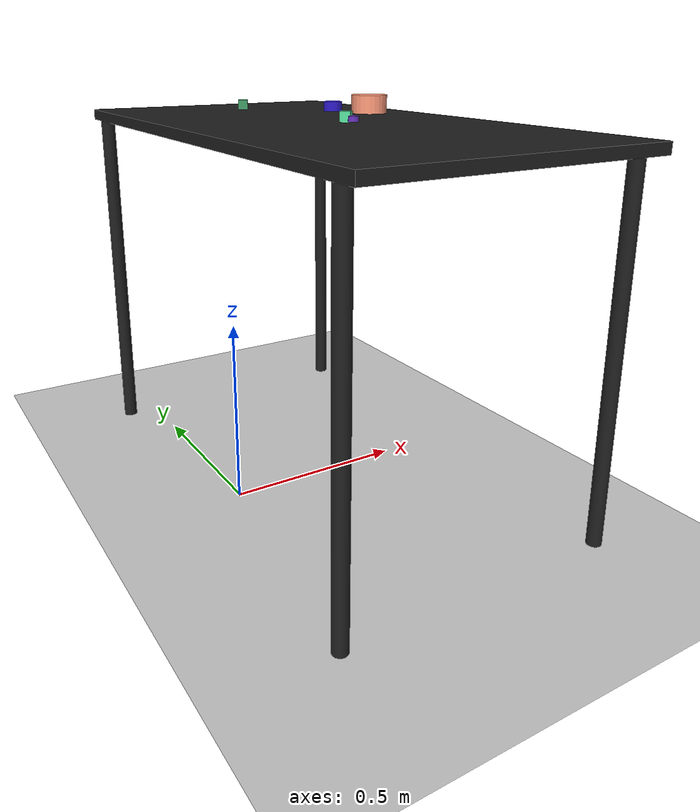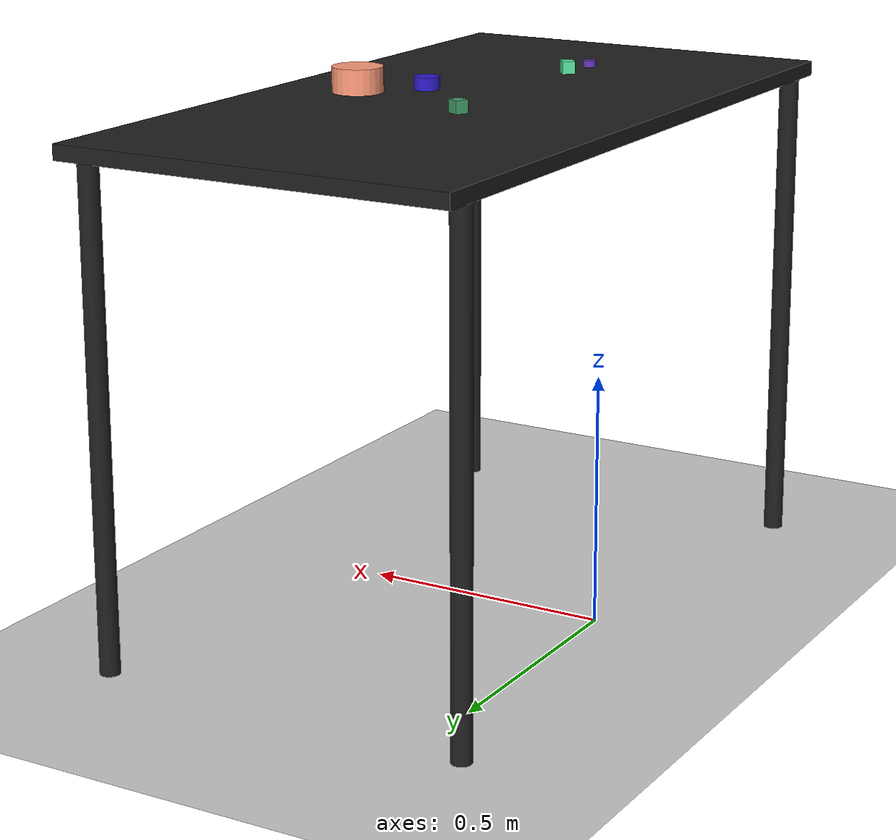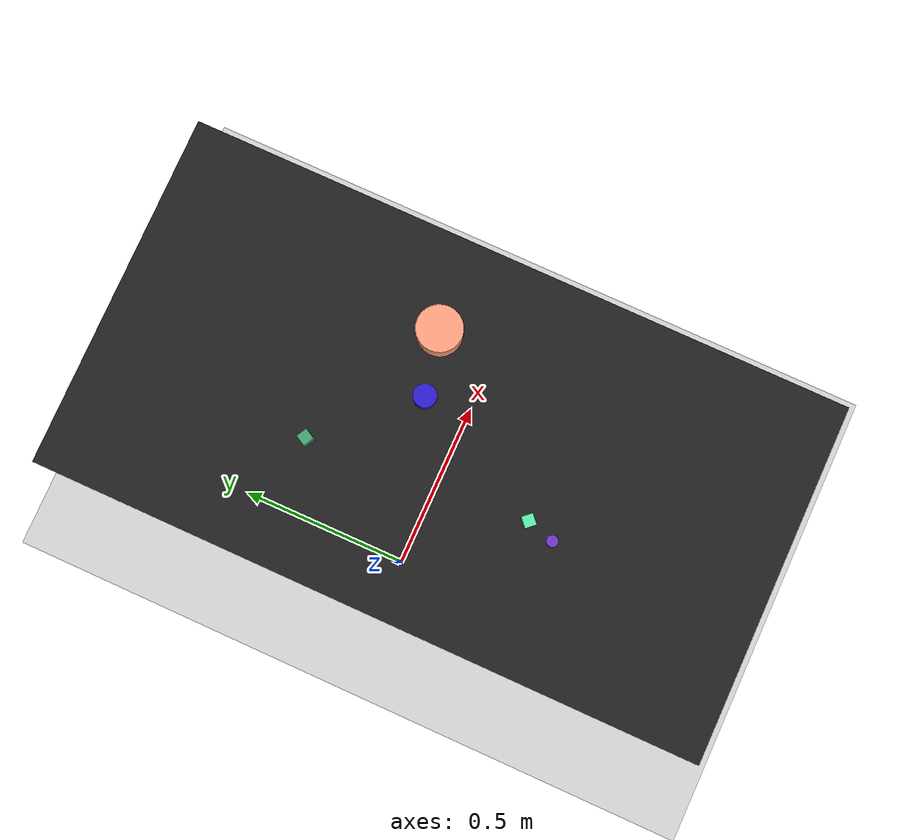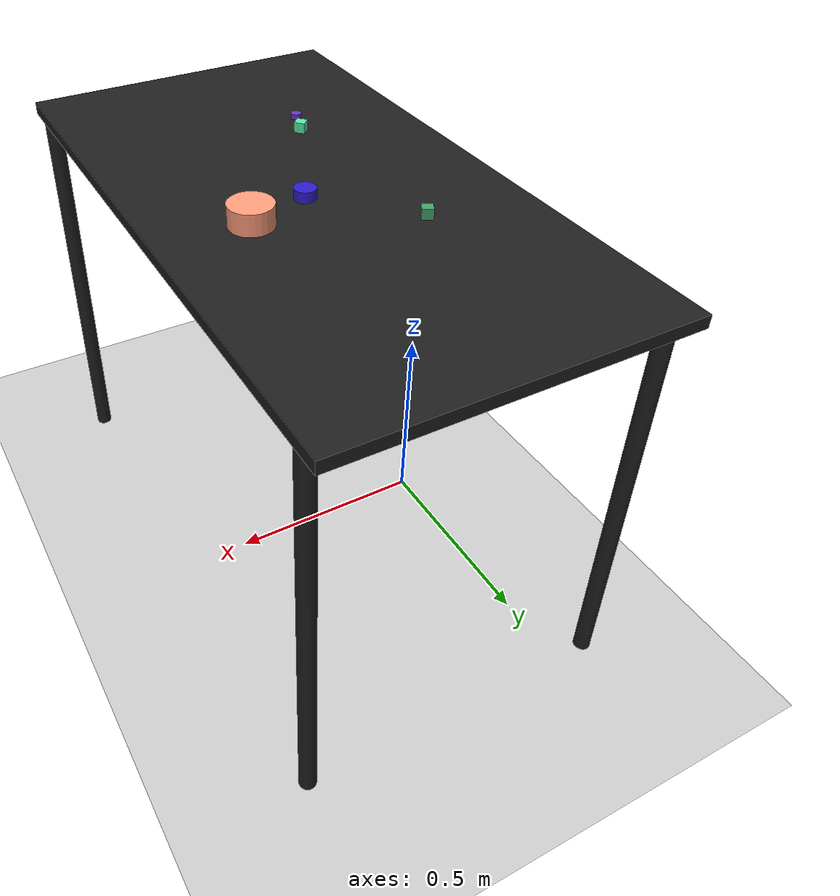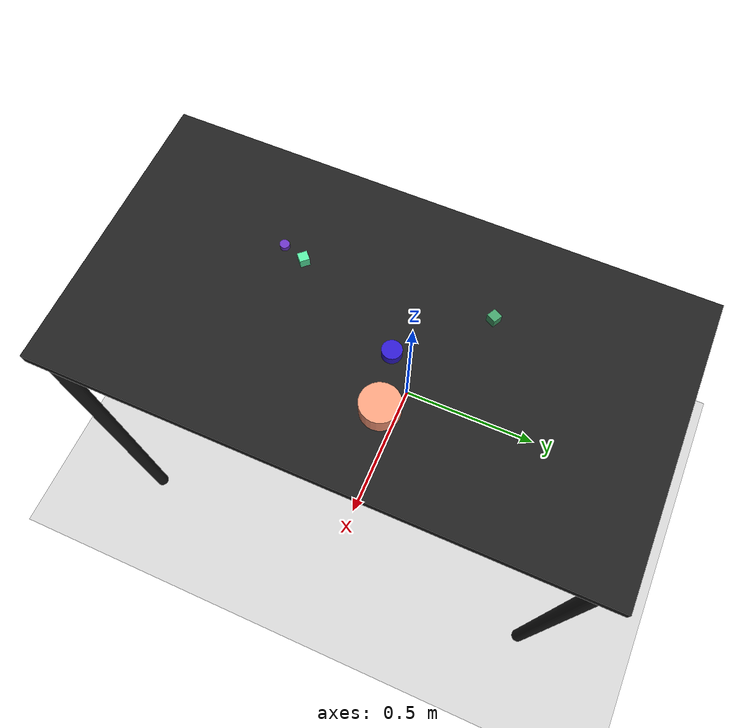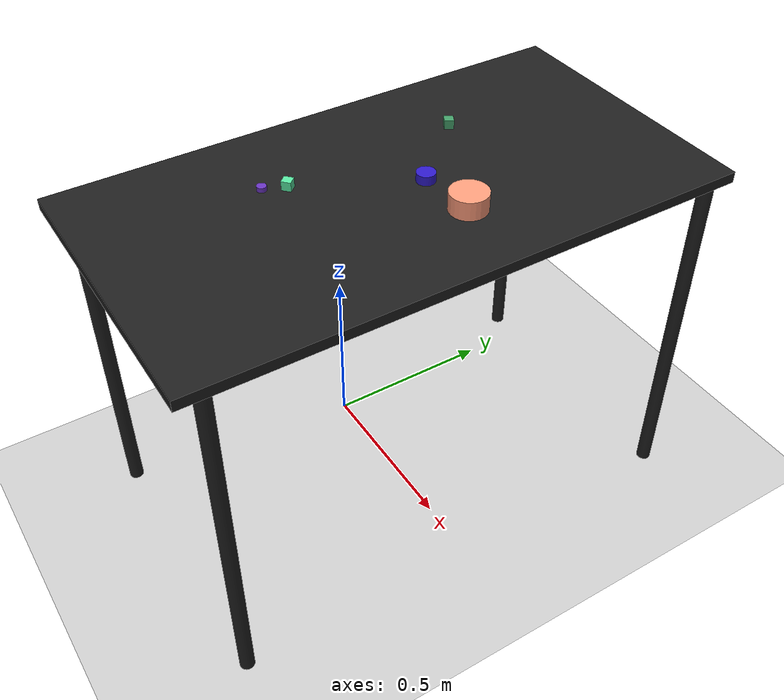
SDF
<?xml version="1.0" ?>
<sdf version="1.6">
  <world name="arm_world">
    <plugin filename="gz-sim-physics-system" name="gz::sim::systems::Physics">
      <engine>
        <filename>libgz-physics-bullet-featherstone-plugin.so</filename>
      </engine>
    </plugin>
    <plugin filename="gz-sim-user-commands-system" name="gz::sim::systems::UserCommands"/>
    <plugin filename="gz-sim-scene-broadcaster-system" name="gz::sim::systems::SceneBroadcaster"/>
    <plugin filename="gz-sim-sensors-system" name="gz::sim::systems::Sensors">
      <render_engine>ogre2</render_engine>
    </plugin>
    <gravity>0.0 0.0 -9.8</gravity>
    <scene>
      <shadows>false</shadows>
    </scene>
    <gui>
      <camera name="user_camera">
        <pose>0.75 -0.75 1.4 0 0.29 2.21</pose>
      </camera>
    </gui>
    <include>
      <uri>https://fuel.gazebosim.org/1.0/OpenRobotics/models/Sun</uri>
    </include>
    <model name="table">
      <static>true</static>
      <include>
        <uri>model://table</uri>
      </include>
      <pose>0.29 0 0 0 0 1.5708</pose>
    </model>
    <model name="ground_plane">
      <static>true</static>
      <link name="link">
        <collision name="collision">
          <geometry>
            <plane>
              <normal>0 0 1</normal>
            </plane>
          </geometry>
          <surface>
            <friction>
              <ode>
                <mu>1.0</mu>
                <mu2>1.0</mu2>
              </ode>
            </friction>
          </surface>
        </collision>
        <visual name="visual">
          <geometry>
            <plane>
              <normal>0 0 1</normal>
              <size>100 100</size>
            </plane>
          </geometry>
          <material>
            <ambient>0.8 0.8 0.8 1</ambient>
            <diffuse>0.8 0.8 0.8 1</diffuse>
            <specular>0.8 0.8 0.8 1</specular>
          </material>
        </visual>
      </link>
    </model>
    <model name="cube_s_0">
      <pose>0.198 -0.235 1.05 0 0 5.46</pose>
      <link name="cube_s_0_link">
        <inertial>
          <mass>0.05</mass>
          <inertia>
            <ixx>2.04e-7</ixx>
            <iyy>2.04e-7</iyy>
            <izz>3.9e-8</izz>
            <ixy>0</ixy>
            <ixz>0</ixz>
            <iyz>0</iyz>
          </inertia>
        </inertial>
        <collision name="cube_s_0_collision">
          <geometry>
            <box>
              <size>0.025 0.025 0.025</size>
            </box>
          </geometry>
          <surface>
            <friction>
              <ode>
                <mu>0.8</mu>
                <mu2>0.8</mu2>
                <fdir1>0 0 1</fdir1>
                <slip1>0.001</slip1>
                <slip2>0.001</slip2>
              </ode>
              <torsional>
                <coefficient>0.1</coefficient>
                <surface_radius>0.015</surface_radius>
                <use_patch_radius>true</use_patch_radius>
              </torsional>
            </friction>
            <contact>
              <ode>
                <kp>1e5</kp>
                <kd>10</kd>
                <max_vel>0.1</max_vel>
                <min_depth>0.001</min_depth>
                <soft_cfm>0.01</soft_cfm>
                <soft_erp>0.2</soft_erp>
              </ode>
            </contact>
            <bounce>
              <restitution_coefficient>0.2</restitution_coefficient>
              <threshold>0.01</threshold>
            </bounce>
          </surface>
        </collision>
        <visual name="cube_s_0_visual">
          <geometry>
            <box>
              <size>0.025 0.025 0.025</size>
            </box>
          </geometry>
          <material>
            <ambient>0.34 0.9 0.63 1</ambient>
            <diffuse>0.34 0.9 0.63 1</diffuse>
          </material>
        </visual>
        <velocity_decay>
          <linear>1</linear>
          <angular>1</angular>
        </velocity_decay>
      </link>
    </model>
    <model name="cube_s_1">
      <pose>0.166 0.249 1.05 0 0 2.65</pose>
      <link name="cube_s_1_link">
        <inertial>
          <mass>0.05</mass>
          <inertia>
            <ixx>2.04e-7</ixx>
            <iyy>2.04e-7</iyy>
            <izz>3.9e-8</izz>
            <ixy>0</ixy>
            <ixz>0</ixz>
            <iyz>0</iyz>
          </inertia>
        </inertial>
        <collision name="cube_s_1_collision">
          <geometry>
            <box>
              <size>0.025 0.025 0.025</size>
            </box>
          </geometry>
          <surface>
            <friction>
              <ode>
                <mu>0.8</mu>
                <mu2>0.8</mu2>
                <fdir1>0 0 1</fdir1>
                <slip1>0.001</slip1>
                <slip2>0.001</slip2>
              </ode>
              <torsional>
                <coefficient>0.1</coefficient>
                <surface_radius>0.015</surface_radius>
                <use_patch_radius>true</use_patch_radius>
              </torsional>
            </friction>
            <contact>
              <ode>
                <kp>1e5</kp>
                <kd>10</kd>
                <max_vel>0.1</max_vel>
                <min_depth>0.001</min_depth>
                <soft_cfm>0.01</soft_cfm>
                <soft_erp>0.2</soft_erp>
              </ode>
            </contact>
            <bounce>
              <restitution_coefficient>0.2</restitution_coefficient>
              <threshold>0.01</threshold>
            </bounce>
          </surface>
        </collision>
        <visual name="cube_s_1_visual">
          <geometry>
            <box>
              <size>0.025 0.025 0.025</size>
            </box>
          </geometry>
          <material>
            <ambient>0.26 0.62 0.41 1</ambient>
            <diffuse>0.26 0.62 0.41 1</diffuse>
          </material>
        </visual>
        <velocity_decay>
          <linear>1</linear>
          <angular>1</angular>
        </velocity_decay>
      </link>
    </model>
    <model name="cylinder_l_2">
      <pose>0.481 0.091 1.05 0 0 2.08</pose>
      <link name="cylinder_l_2_link">
        <inertial>
          <mass>0.05</mass>
          <inertia>
            <ixx>2.04e-7</ixx>
            <iyy>2.04e-7</iyy>
            <izz>3.9e-8</izz>
            <ixy>0</ixy>
            <ixz>0</ixz>
            <iyz>0</iyz>
          </inertia>
        </inertial>
        <collision name="cylinder_l_2_collision">
          <geometry>
            <cylinder>
              <radius>0.05</radius>
              <length>0.05</length>
            </cylinder>
          </geometry>
          <surface>
            <friction>
              <ode>
                <mu>0.8</mu>
                <mu2>0.8</mu2>
                <fdir1>0 0 1</fdir1>
                <slip1>0.001</slip1>
                <slip2>0.001</slip2>
              </ode>
              <torsional>
                <coefficient>0.1</coefficient>
                <surface_radius>0.015</surface_radius>
                <use_patch_radius>true</use_patch_radius>
              </torsional>
            </friction>
            <contact>
              <ode>
                <kp>1e5</kp>
                <kd>10</kd>
                <max_vel>0.1</max_vel>
                <min_depth>0.001</min_depth>
                <soft_cfm>0.01</soft_cfm>
                <soft_erp>0.2</soft_erp>
              </ode>
            </contact>
            <bounce>
              <restitution_coefficient>0.2</restitution_coefficient>
              <threshold>0.01</threshold>
            </bounce>
          </surface>
        </collision>
        <visual name="cylinder_l_2_visual">
          <geometry>
            <cylinder>
              <radius>0.05</radius>
              <length>0.05</length>
            </cylinder>
          </geometry>
          <material>
            <ambient>1.0 0.61 0.48 1</ambient>
            <diffuse>1.0 0.61 0.48 1</diffuse>
          </material>
        </visual>
        <velocity_decay>
          <linear>1</linear>
          <angular>1</angular>
        </velocity_decay>
      </link>
    </model>
    <model name="cylinder_s_3">
      <pose>0.18 -0.295 1.05 0 0 5.91</pose>
      <link name="cylinder_s_3_link">
        <inertial>
          <mass>0.05</mass>
          <inertia>
            <ixx>2.04e-7</ixx>
            <iyy>2.04e-7</iyy>
            <izz>3.9e-8</izz>
            <ixy>0</ixy>
            <ixz>0</ixz>
            <iyz>0</iyz>
          </inertia>
        </inertial>
        <collision name="cylinder_s_3_collision">
          <geometry>
            <cylinder>
              <radius>0.0125</radius>
              <length>0.0125</length>
            </cylinder>
          </geometry>
          <surface>
            <friction>
              <ode>
                <mu>0.8</mu>
                <mu2>0.8</mu2>
                <fdir1>0 0 1</fdir1>
                <slip1>0.001</slip1>
                <slip2>0.001</slip2>
              </ode>
              <torsional>
                <coefficient>0.1</coefficient>
                <surface_radius>0.015</surface_radius>
                <use_patch_radius>true</use_patch_radius>
              </torsional>
            </friction>
            <contact>
              <ode>
                <kp>1e5</kp>
                <kd>10</kd>
                <max_vel>0.1</max_vel>
                <min_depth>0.001</min_depth>
                <soft_cfm>0.01</soft_cfm>
                <soft_erp>0.2</soft_erp>
              </ode>
            </contact>
            <bounce>
              <restitution_coefficient>0.2</restitution_coefficient>
              <threshold>0.01</threshold>
            </bounce>
          </surface>
        </collision>
        <visual name="cylinder_s_3_visual">
          <geometry>
            <cylinder>
              <radius>0.0125</radius>
              <length>0.0125</length>
            </cylinder>
          </geometry>
          <material>
            <ambient>0.41 0.2 0.75 1</ambient>
            <diffuse>0.41 0.2 0.75 1</diffuse>
          </material>
        </visual>
        <velocity_decay>
          <linear>1</linear>
          <angular>1</angular>
        </velocity_decay>
      </link>
    </model>
    <model name="cylinder_m_4">
      <pose>0.344 0.062 1.05 0 0 5.16</pose>
      <link name="cylinder_m_4_link">
        <inertial>
          <mass>0.05</mass>
          <inertia>
            <ixx>2.04e-7</ixx>
            <iyy>2.04e-7</iyy>
            <izz>3.9e-8</izz>
            <ixy>0</ixy>
            <ixz>0</ixz>
            <iyz>0</iyz>
          </inertia>
        </inertial>
        <collision name="cylinder_m_4_collision">
          <geometry>
            <cylinder>
              <radius>0.025</radius>
              <length>0.025</length>
            </cylinder>
          </geometry>
          <surface>
            <friction>
              <ode>
                <mu>0.8</mu>
                <mu2>0.8</mu2>
                <fdir1>0 0 1</fdir1>
                <slip1>0.001</slip1>
                <slip2>0.001</slip2>
              </ode>
              <torsional>
                <coefficient>0.1</coefficient>
                <surface_radius>0.015</surface_radius>
                <use_patch_radius>true</use_patch_radius>
              </torsional>
            </friction>
            <contact>
              <ode>
                <kp>1e5</kp>
                <kd>10</kd>
                <max_vel>0.1</max_vel>
                <min_depth>0.001</min_depth>
                <soft_cfm>0.01</soft_cfm>
                <soft_erp>0.2</soft_erp>
              </ode>
            </contact>
            <bounce>
              <restitution_coefficient>0.2</restitution_coefficient>
              <threshold>0.01</threshold>
            </bounce>
          </surface>
        </collision>
        <visual name="cylinder_m_4_visual">
          <geometry>
            <cylinder>
              <radius>0.025</radius>
              <length>0.025</length>
            </cylinder>
          </geometry>
          <material>
            <ambient>0.18 0.1 0.79 1</ambient>
            <diffuse>0.18 0.1 0.79 1</diffuse>
          </material>
        </visual>
        <velocity_decay>
          <linear>1</linear>
          <angular>1</angular>
        </velocity_decay>
      </link>
    </model>
  </world>
</sdf>

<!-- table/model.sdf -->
<sdf version="1.5">
  <model name="table">
    <static>true</static>
    <link name="link">
      <collision name="surface">
        <pose>0 0 1.0 0 0 0</pose>
        <geometry>
          <box>
            <size>1.5 0.8 0.03</size>
          </box>
        </geometry>
        <surface>
          <friction>
            <ode>
              <mu>0.6</mu>
              <mu2>0.6</mu2>
            </ode>
          </friction>
        </surface>
      </collision>
      <visual name="surface">
        <pose>0 0 1.0 0 0 0</pose>
        <geometry>
          <box>
            <size>1.5 0.8 0.03</size>
          </box>
        </geometry>
        <material>
          <script>
            <uri>file://media/materials/scripts/gazebo.material</uri>
            <name>Gazebo/Black</name>
          </script>
        </material>
      </visual>
      <collision name="front_left_leg">
        <pose>0.68 0.38 0.5 0 0 0</pose>
        <geometry>
          <cylinder>
            <radius>0.02</radius>
            <length>1.0</length>
          </cylinder>
        </geometry>
      </collision>
      <visual name="front_left_leg">
        <pose>0.68 0.38 0.5 0 0 0</pose>
        <geometry>
          <cylinder>
            <radius>0.02</radius>
            <length>1.0</length>
          </cylinder>
        </geometry>
        <material>
          <script>
            <uri>file://media/materials/scripts/gazebo.material</uri>
            <name>Gazebo/Black</name>
          </script>
        </material>
      </visual>
      <collision name="front_right_leg">
        <pose>0.68 -0.38 0.5 0 0 0</pose>
        <geometry>
          <cylinder>
            <radius>0.02</radius>
            <length>1.0</length>
          </cylinder>
        </geometry>
      </collision>
      <visual name="front_right_leg">
        <pose>0.68 -0.38 0.5 0 0 0</pose>
        <geometry>
          <cylinder>
            <radius>0.02</radius>
            <length>1.0</length>
          </cylinder>
        </geometry>
        <material>
          <script>
            <uri>file://media/materials/scripts/gazebo.material</uri>
            <name>Gazebo/Black</name>
          </script>
        </material>
      </visual>
      <collision name="back_right_leg">
        <pose>-0.68 -0.38 0.5 0 0 0</pose>
        <geometry>
          <cylinder>
            <radius>0.02</radius>
            <length>1.0</length>
          </cylinder>
        </geometry>
      </collision>
      <visual name="back_right_leg">
        <pose>-0.68 -0.38 0.5 0 0 0</pose>
        <geometry>
          <cylinder>
            <radius>0.02</radius>
            <length>1.0</length>
          </cylinder>
        </geometry>
        <material>
          <script>
            <uri>file://media/materials/scripts/gazebo.material</uri>
            <name>Gazebo/Black</name>
          </script>
        </material>
      </visual>
      <collision name="back_left_leg">
        <pose>-0.68 0.38 0.5 0 0 0</pose>
        <geometry>
          <cylinder>
            <radius>0.02</radius>
            <length>1.0</length>
          </cylinder>
        </geometry>
      </collision>
      <visual name="back_left_leg">
        <pose>-0.68 0.38 0.5 0 0 0</pose>
        <geometry>
          <cylinder>
            <radius>0.02</radius>
            <length>1.0</length>
          </cylinder>
        </geometry>
        <material>
          <script>
            <uri>file://media/materials/scripts/gazebo.material</uri>
            <name>Gazebo/Black</name>
          </script>
        </material>
      </visual>
    </link>
  </model>
</sdf>
